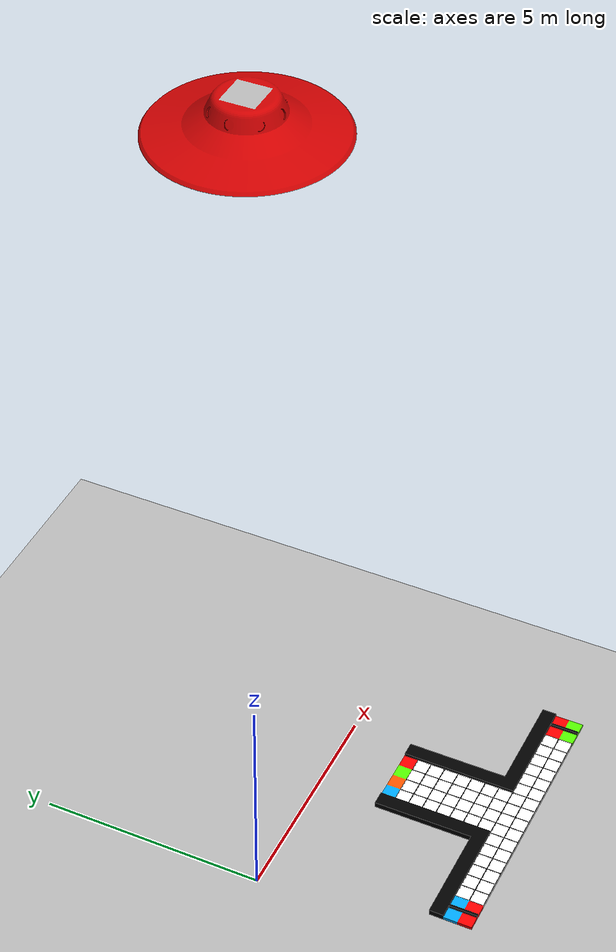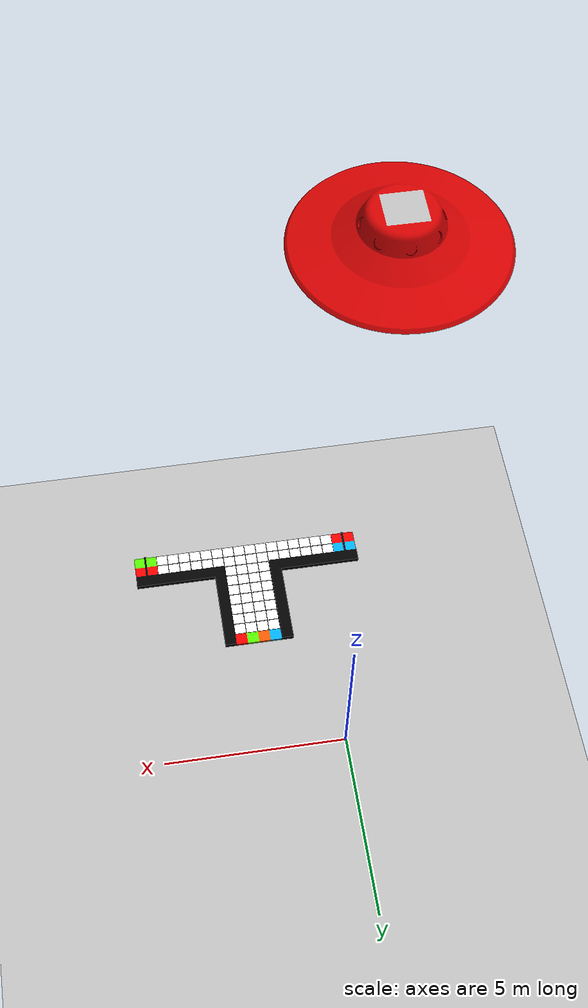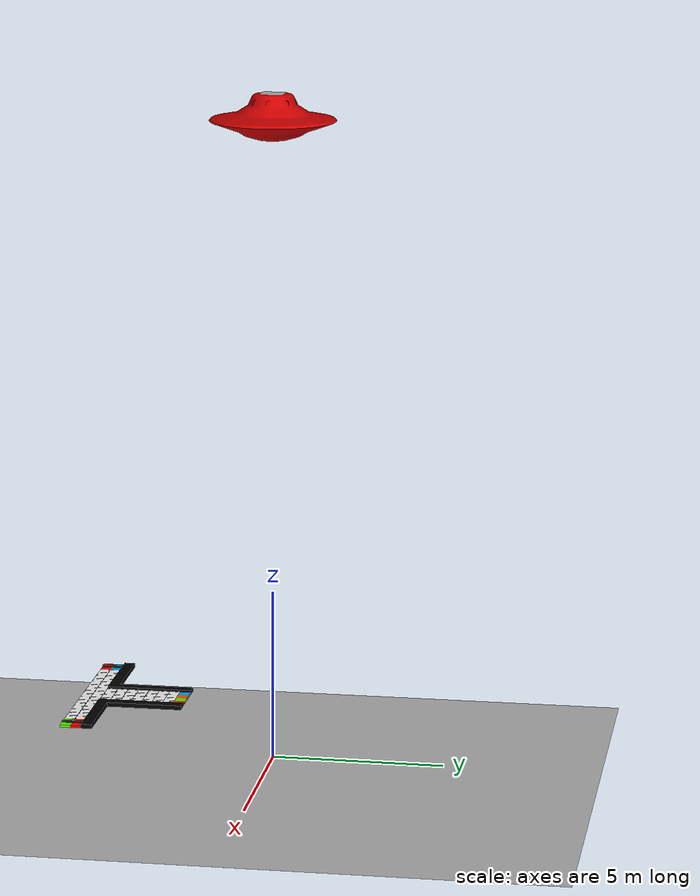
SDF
<?xml version="1.0" ?>

<sdf version="1.7">

    <world name="default">

        <plugin
            filename="libignition-gazebo-physics-system.so"
            name="ignition::gazebo::systems::Physics"/>

        <plugin
            filename="libignition-gazebo-user-commands-system.so"
            name="ignition::gazebo::systems::UserCommands"/>

        <plugin
            filename="libignition-gazebo-scene-broadcaster-system.so"
            name="ignition::gazebo::systems::SceneBroadcaster"/>

        <plugin
            filename="libignition-gazebo-sensors-system.so"
            name="ignition::gazebo::systems::Sensors">

            <render_engine>ogre2</render_engine>

        </plugin>

        <scene>
            <shadows>false</shadows>
            <ambient>0.5 0.5 0.5 1.0</ambient>
            <grid>false</grid>

            <sky>
                <time>12</time>
                <sunrise>10</sunrise>
                <sunset>21</sunset>

                <clouds>
                    <humidity>0</humidity>
                    <cloud_ambient>0.9 0.9 1.0 1.0</cloud_ambient>
                </clouds>
            </sky>
        </scene>

        <light type="directional" name="sun">
            <pose>0 0 30 0 0 0</pose>
            <cast_shadows>false</cast_shadows>
            <diffuse>.9 .9 .9 1</diffuse>
            <specular>.1 .1 .1 1</specular>

            <attenuation>
                <range>20</range>
            </attenuation>

            <direction>-1 -1 -1</direction>
        </light>

        <include>
            <uri>model://ground_surface</uri>
            <pose>0 0 0.02 0 0 0</pose>
            <static>true</static>
        </include>

        <include>
            <uri>model://arena</uri>
            <pose>0 0 0.03 0 0 0</pose>
            <static>true</static>
        </include>

        <include>
            <uri>model://e_camera</uri>
            <pose>0 0 18 0 0 1.57</pose>
        </include>

    </world>

</sdf>

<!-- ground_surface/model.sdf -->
<sdf version='1.6'>

  <model name='ground_surface'>

    <static>true</static>

    <link name='link_0'>

      <pose>0 0 0 0 0 0</pose>

      <self_collide>false</self_collide>
      <enable_wind>false</enable_wind>
      <kinematic>false</kinematic>
      <gravity>true</gravity>

      <inertial>
        <mass>1.0</mass>

        <pose>0 0 0 0 0 0</pose>

        <inertia>
          <ixx>1.0</ixx>
          <ixy>0.0</ixy>
          <ixz>0.0</ixz>
          <iyy>1.0</iyy>
          <iyz>0.0</iyz>
          <izz>1.0</izz>
        </inertia>
      </inertial>

      <visual name='visual'>

        <pose>0 0 0 0 0 0</pose>

        <geometry>
          <mesh>
            <uri>model://ground_surface/meshes/ground_surface.dae</uri>
            <scale>10 10 10</scale>
          </mesh>
        </geometry>

        <transparency>0</transparency>
        <cast_shadows>false</cast_shadows>

      </visual>

      <collision name='collision'>

        <geometry>
          <mesh>
            <uri>model://ground_surface/meshes/ground_surface.dae</uri>
            <scale>10 10 10</scale>
          </mesh>
        </geometry>

      </collision>

    </link>

    <allow_auto_disable>true</allow_auto_disable>

  </model>

</sdf>

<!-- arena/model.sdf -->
<sdf version='1.6'>

  <model name='arena'>

    <static>true</static>

    <link name='link_0'>

      <pose>0 0 0 0 0 0</pose>

      <self_collide>false</self_collide>
      <enable_wind>false</enable_wind>
      <kinematic>false</kinematic>
      <gravity>true</gravity>

      <inertial>
        <mass>1.0</mass>

        <pose>0 0 0 0 0 0</pose>

        <inertia>
          <ixx>1.0</ixx>
          <ixy>0.0</ixy>
          <ixz>0.0</ixz>
          <iyy>1.0</iyy>
          <iyz>0.0</iyz>
          <izz>1.0</izz>
        </inertia>
      </inertial>

      <visual name='visual'>

        <pose>0 0 0 0 0 0</pose>

        <geometry>
          <mesh>
            <uri>model://arena/meshes/arena.dae</uri>
            <scale>2 2 2</scale>
          </mesh>
        </geometry>

        <transparency>0</transparency>
        <cast_shadows>false</cast_shadows>

      </visual>

      <collision name='collision'>

        <geometry>
          <mesh>
            <uri>model://arena/meshes/arena.dae</uri>
            <scale>2 2 2</scale>
          </mesh>
        </geometry>

      </collision>

    </link>

    <allow_auto_disable>true</allow_auto_disable>

  </model>

</sdf>

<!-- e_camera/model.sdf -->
<sdf version="1.6">
  <model name="e_camera">
    <static>true</static>
    <link name="camera_1_link">
      <gravity>false</gravity>
      <inertial>
        <mass>0.1</mass>
        <inertia>
          <ixx>0.000166667</ixx>
          <iyy>0.000166667</iyy>
          <izz>0.000166667</izz>
        </inertia>
      </inertial>

      <collision name="collision">
        <pose>0 0 0 0 0 0</pose>
        <geometry>
          <mesh>
            <uri>model://e_camera/meshes/camera.dae</uri>
            <scale>0.03 0.03 0.03</scale>
          </mesh>
        </geometry>
      </collision>

      <visual name="visual">
        <pose>0 0 0 0 0 0</pose>
        <geometry>
          <mesh>
            <uri>model://e_camera/meshes/camera.dae</uri>
            <scale>0.03 0.03 0.03</scale>
          </mesh>
        </geometry>
      </visual>

    <sensor name="camera" type="camera">

        <pose>0 0 0 1.57 1.57 1.57</pose>

        <visualize>true</visualize>

        <always_on>true</always_on>

        <update_rate>30</update_rate>

        <topic>camera</topic>

        <camera name="camera_1">

            <horizontal_fov>1.2</horizontal_fov>

            <image>
                <width>500</width>
                <height>500</height>
                <format>R8G8B8</format>
            </image>

            <clip>
                <near>0.2</near>
                <far>800</far>
            </clip>

        </camera>

    </sensor>

    </link>

  </model>

</sdf>
